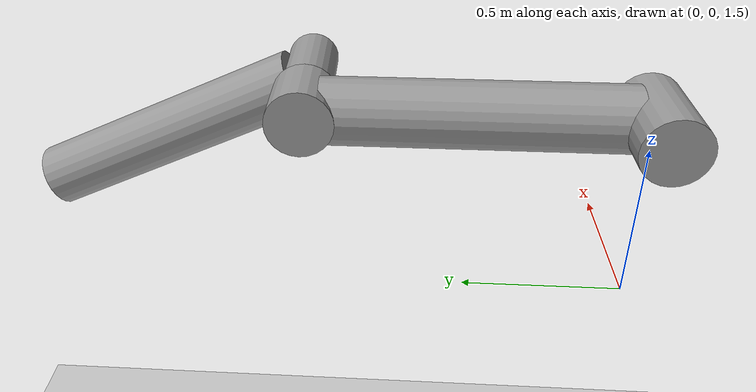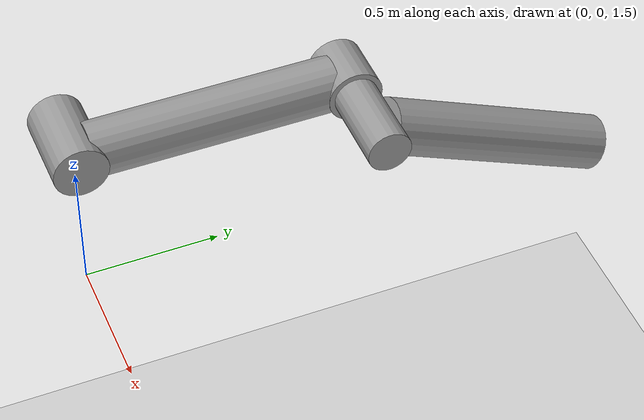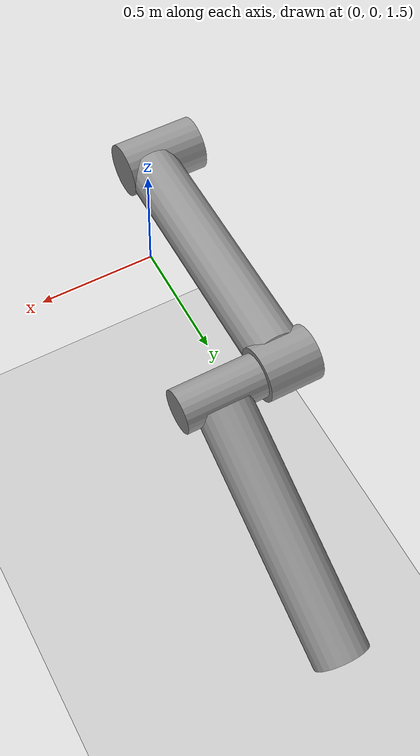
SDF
<?xml version="1.0" ?>
<sdf version="1.4">
  <world name="default">
    <!-- A ground plane -->

    <physics type="ode">
      <gravity>0.0 0.0 -9.81</gravity>
      <real_time_update_rate>0.000000</real_time_update_rate>
      <max_step_size>0.001000</max_step_size>
    </physics>

    <model name="ground_plane">
      <static>true</static>
      <link name="link">
        <collision name="collision">
          <geometry>
            <plane>
              <normal>0 0 1</normal>
              <size>100 100</size>
            </plane>
          </geometry>
          <surface>
            <friction>
              <ode>
                <mu>100</mu>
                <mu2>50</mu2>
              </ode>
            </friction>
          </surface>
        </collision>
        <visual name="visual">
          <cast_shadows>false</cast_shadows>
          <geometry>
            <plane>
              <normal>0 0 1</normal>
              <size>100 100</size>
            </plane>
          </geometry>
          <material>
            <script>
              <uri>file://media/materials/scripts/gazebo.material</uri>
              <name>Gazebo/Grey</name>
            </script>
          </material>
        </visual>
      </link>
    </model>

    <model name="double_pendulum_with_base">
      <pose>0 0 0 0 0 0</pose>
      <!-- upper link, length 1, IC -90 degrees -->
      <link name="upper_link">
        <pose>0 0 2.1  -1.5708 0 0</pose>
        <self_collide>0</self_collide>
        <inertial>
          <pose>0 0 0.5  0 0 0</pose>
        </inertial>
        <visual name="vis_upper_joint">
          <pose>-0.05 0 0  0 1.5708 0</pose>
          <geometry>
            <cylinder>
              <radius>0.1</radius>
              <length>0.3</length>
            </cylinder>
          </geometry>
          <material>
            <script>
              <uri>file://media/materials/scripts/gazebo.material</uri>
              <name>Gazebo/Grey</name>
            </script>
          </material>
        </visual>
        <visual name="vis_lower_joint">
          <pose>0 0 1.0  0 1.5708 0</pose>
          <geometry>
            <cylinder>
              <radius>0.1</radius>
              <length>0.2</length>
            </cylinder>
          </geometry>
          <material>
            <script>
              <uri>file://media/materials/scripts/gazebo.material</uri>
              <name>Gazebo/Grey</name>
            </script>
          </material>
        </visual>
        <visual name="vis_cylinder">
          <pose>0 0 0.5  0 0 0</pose>
          <geometry>
            <cylinder>
              <radius>0.1</radius>
              <length>0.9</length>
            </cylinder>
          </geometry>
          <material>
            <script>
              <uri>file://media/materials/scripts/gazebo.material</uri>
              <name>Gazebo/Grey</name>
            </script>
          </material>
        </visual>
      </link>
      <!-- lower link, length 1, IC ~-120 degrees more -->
      <link name="lower_link">
        <pose>0.25 1.0 2.1  -2 0 0</pose>
        <self_collide>0</self_collide>
        <inertial>
          <pose>0 0 0.5  0 0 0</pose>
        </inertial>
        <visual name="vis_lower_joint">
          <pose>0 0 0  0 1.5708 0</pose>
          <geometry>
            <cylinder>
              <radius>0.08</radius>
              <length>0.3</length>
            </cylinder>
          </geometry>
          <material>
            <script>
              <uri>file://media/materials/scripts/gazebo.material</uri>
              <name>Gazebo/Grey</name>
            </script>
          </material>
        </visual>
        <visual name="vis_cylinder">
          <pose>0 0 0.5  0 0 0</pose>
          <geometry>
            <cylinder>
              <radius>0.1</radius>
              <length>0.9</length>
            </cylinder>
          </geometry>
          <material>
            <script>
              <uri>file://media/materials/scripts/gazebo.material</uri>
              <name>Gazebo/Grey</name>
            </script>
          </material>
        </visual>
      </link>
      <!-- pin joint for upper link, at origin of upper link -->
      <joint name="upper_joint" type="revolute">
        <parent>world</parent>
        <child>upper_link</child>
        <axis>
          <xyz>1.0 0 0</xyz>
        </axis>
      </joint>
      <!-- pin joint for lower link, at origin of child link -->
      <joint name="lower_joint" type="revolute">
        <parent>upper_link</parent>
        <child>lower_link</child>
        <axis>
          <xyz>1.0 0 0</xyz>
        </axis>
      </joint>
    </model>

  </world>
</sdf>
